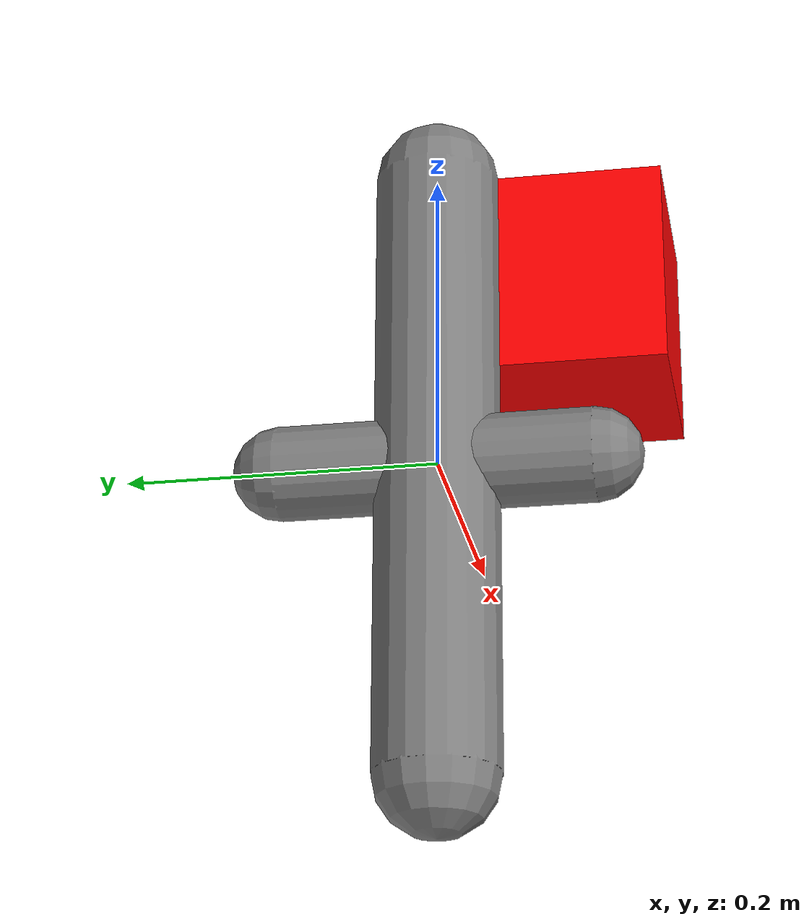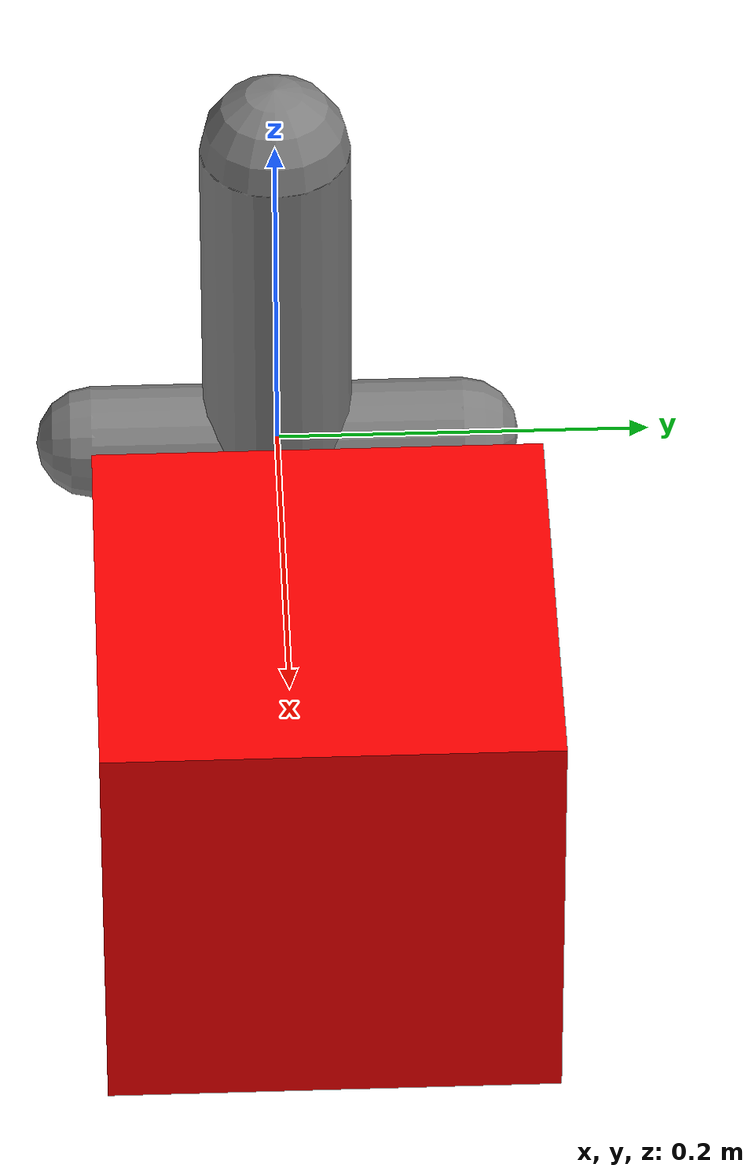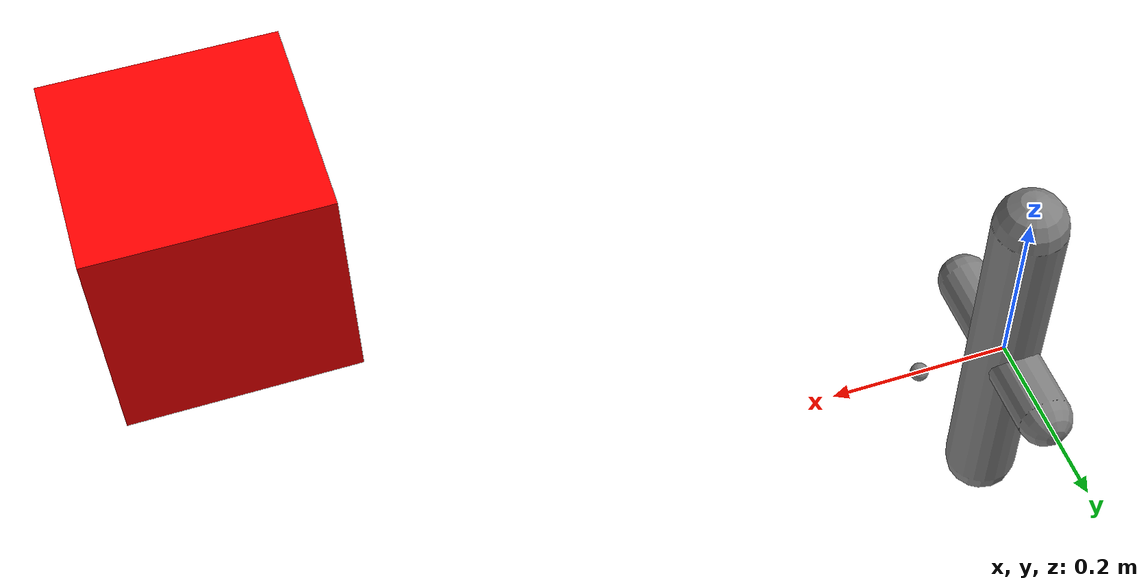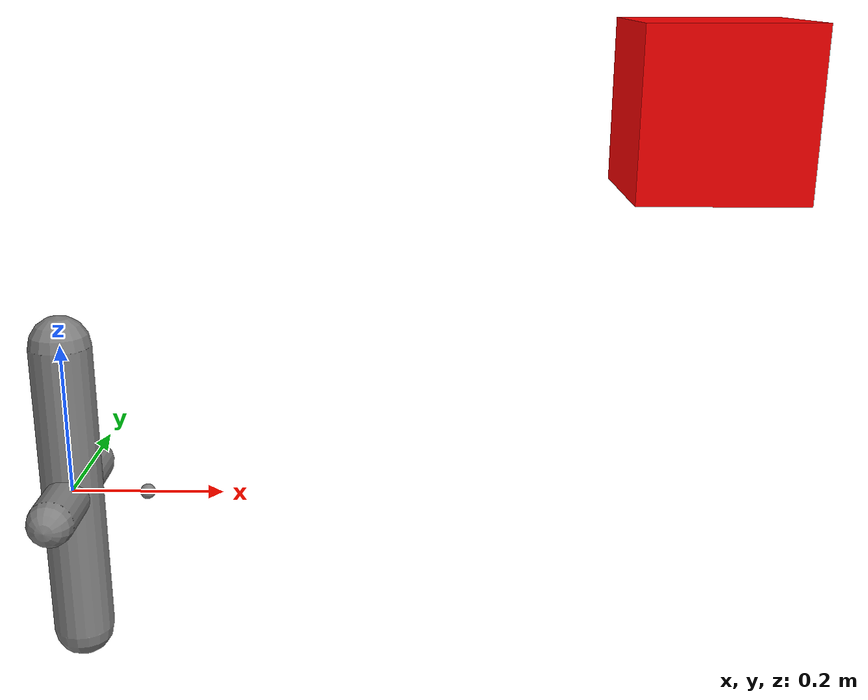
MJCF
<mujoco model="arm3d">
  <compiler inertiafromgeom="true" angle="radian" coordinate="local" />
  <option timestep="0.01" gravity="0 0 0" iterations="20" integrator="Euler" />

  <default>
    <joint armature='0.04' damping="1" limited="true"/>
    <geom friction=".8 .1 .1" density="300" margin="0.002" condim="1" contype="1" conaffinity="1"/>
  </default>

  <worldbody>
    <body name="palm" pos="0 0 0">
      <joint name="robot_slidez" type="slide" pos="0.1 0.05 0.05" axis="0 0 1" range="-10.3213 10.3" damping="0.5"/>
      <joint name="robot_slidex" type="slide" pos="0.05 0.05 0.05" axis="1 0 0" range="-10.3213 10.3" damping="0.5"/>
      <geom type="capsule" fromto="0 -0.1 0 0 0.1 0" size="0.03"/>

      <body name="paddle" pos="0 0 0" >
        <joint name="distal_j_2" type="hinge" pos="0 0 0" axis="0 1 0" range="-2.3213 2.3" damping="1.0"/>

        <geom type="capsule" fromto="0 0 -0.2 0 0 0.2" size="0.04" contype="1" conaffinity="1" />
        <body name ="site" pos="0 0 0" >
          <site name="tip arm" pos="0.1 0 0" size="0.01" />
        </body>
      </body>
    </body>

    <body name="goal" pos="0.8 0.0 0.5">
      <geom rgba="1. 0. 0. 1" type="box" size="0.1 0.1 0.1" density='0.00001' contype="0" conaffinity="0"/>
      <site name="goal pos" pos="0 0 0" size="0.01" />
    </body>
  </worldbody>

  <actuator>
    <motor joint="robot_slidez" ctrlrange="-1 1" ctrllimited="true"/>
    <motor joint="robot_slidex" ctrlrange="-1 1" ctrllimited="true"/>
    <motor joint="distal_j_2" ctrlrange="-2 2" ctrllimited="true"/>
  </actuator>
</mujoco>
